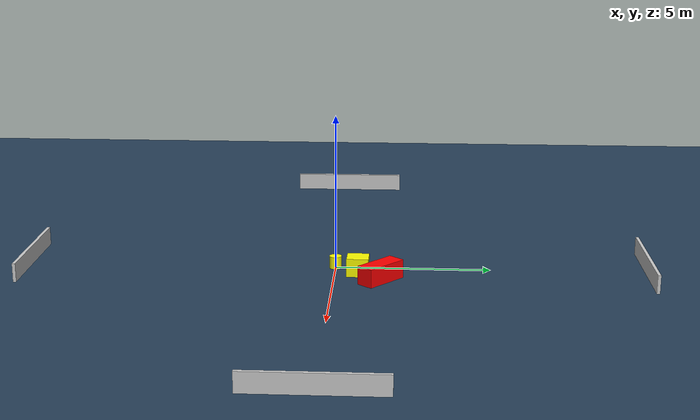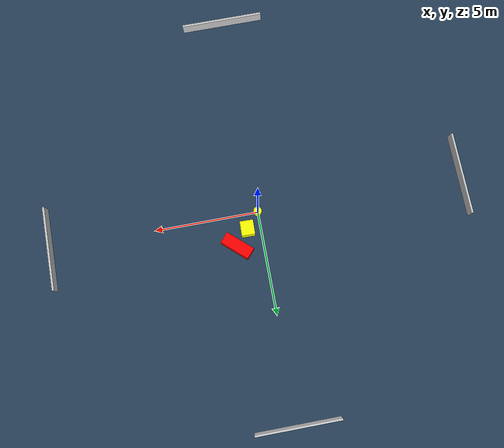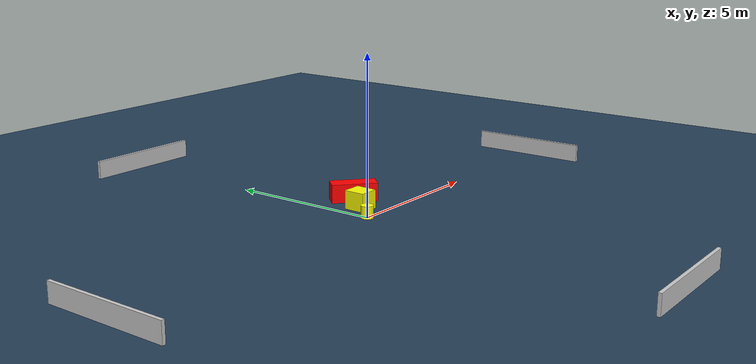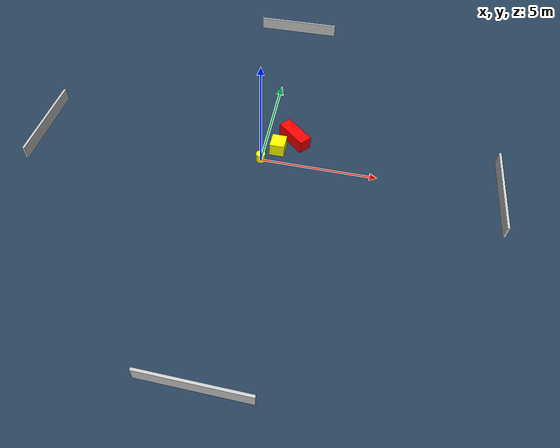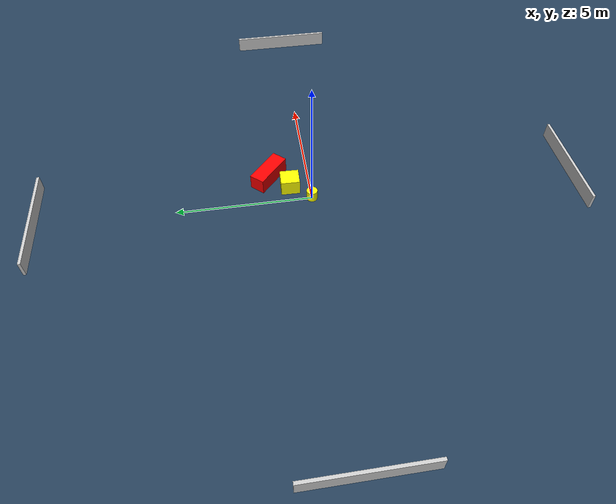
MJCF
<?xml version="1.0" ?>
<mujoco model="generated_environment">
  <option timestep="0.01" integrator="RK4" cone="elliptic"/>
  <default>
    <geom density="1"/>
  </default>
  <asset>
    <texture builtin="gradient" height="3072" name="skybox" rgb1="0.3 0.5 0.7" rgb2="0 0 0" type="skybox" width="512"/>
    <texture builtin="checker" height="300" name="groundplane" rgb1="0.2 0.3 0.4" rgb2="0.1 0.2 0.3" type="2d" width="300"/>
    <material name="groundplane" reflectance="0.2" texrepeat="5 5" texture="groundplane"/>
  </asset>
  <worldbody>
    <light dir="0 0 -1" directional="true" pos="0 0 1.5"/>
    <geom condim="3" friction="0.5 0.005 0.001" material="groundplane" name="floor" pos="0 0 0" size="0 0 0.05" type="plane"/>
    <body name="walls">
      <geom name="wall_1" condim="4" pos="-10.0 0.0 0.3" rgba="0.800000011920929 0.800000011920929 0.800000011920929 1.0" size="0.05 2.0 0.3" type="box"/>
      <geom name="wall_2" condim="4" pos="10.0 0.0 0.3" rgba="0.800000011920929 0.800000011920929 0.800000011920929 1.0" size="0.05 2.0 0.3" type="box"/>
      <geom name="wall_3" condim="4" pos="0.0 -10.0 0.3" rgba="0.800000011920929 0.800000011920929 0.800000011920929 1.0" size="2.0 0.05 0.3" type="box"/>
      <geom name="wall_4" condim="4" pos="0.0 10.0 0.3" rgba="0.800000011920929 0.800000011920929 0.800000011920929 1.0" size="2.0 0.05 0.3" type="box"/>
    </body>
    <body name="robot">
      <joint name="joint_x" type="slide" pos="0 0 0" axis="1 0 0"/>
      <joint name="joint_y" type="slide" pos="0 0 0" axis="0 1 0"/>
      <geom name="robot" type="cylinder" pos="0.0 0.0 0.2" size="0.2 0.2 0.0" mass="5.0" friction="1.0 0.005 0.0001" condim="4" rgba="1.0 1.0 0.0 1.0"/>
    </body>
    <body name="obstacle_1_movable">
      <geom name="obstacle_1_movable" condim="4" pos="0.630202975961958 0.7478788410014562 0.3" euler="0 0 178.73245020252836" friction="0.0 0.005 0.001" rgba="1.0 1.0 0.0 1.0" size="0.32104692134104684 0.3484960269426577 0.3" type="box" mass="0.1"/>
      <joint type="free"/>
    </body>
    <body name="obstacle_2_static">
      <geom name="obstacle_2_static" condim="4" pos="1.2444175346831792 1.4871043970073106 0.3" euler="0 0 228.31873268899224" friction="0.0 0.005 0.001" rgba="1.0 0.0 0.0 1.0" size="0.28598255423573266 0.7410706746081999 0.3" type="box"/>
    </body>
  </worldbody>
  <actuator>
    <motor name="actuator_x" joint="joint_x" gear="1" ctrlrange="-1 1"/>
    <motor name="actuator_y" joint="joint_y" gear="1" ctrlrange="-1 1"/>
  </actuator>
</mujoco>
